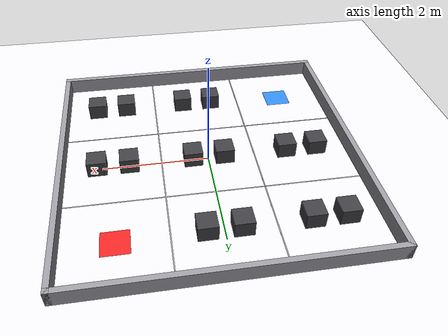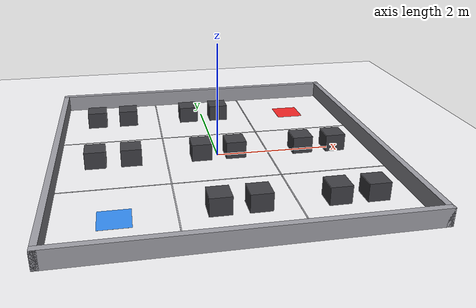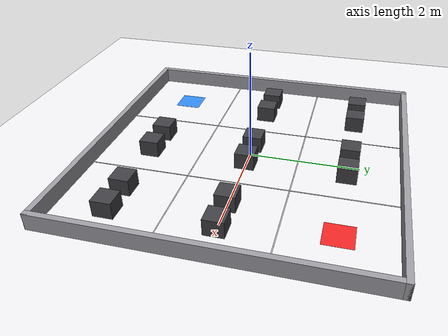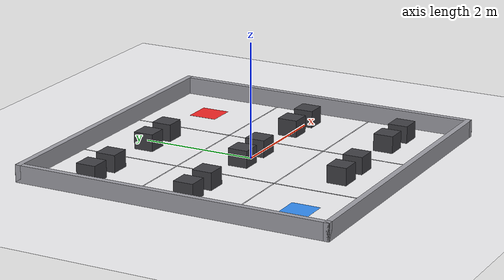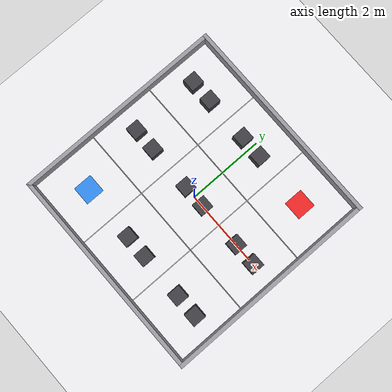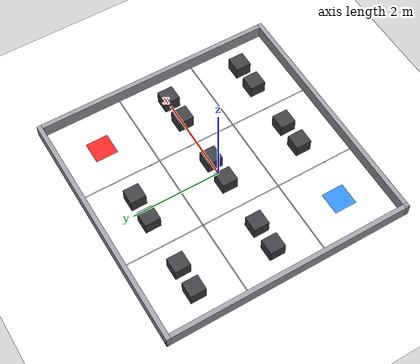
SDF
<?xml version="1.0"?>
<sdf version="1.9">
  <world name="nav_arena">

    <physics name="default_physics" type="ode">
      <max_step_size>0.004</max_step_size>
      <real_time_factor>1.0</real_time_factor>
      <real_time_update_rate>250</real_time_update_rate>
    </physics>

    <plugin filename="gz-sim-physics-system"
            name="gz::sim::systems::Physics"/>
    <plugin filename="gz-sim-user-commands-system"
            name="gz::sim::systems::UserCommands"/>
    <plugin filename="gz-sim-scene-broadcaster-system"
            name="gz::sim::systems::SceneBroadcaster"/>
    <plugin filename="gz-sim-sensors-system"
            name="gz::sim::systems::Sensors">
      <render_engine>ogre2</render_engine>
    </plugin>

    <light type="directional" name="sun">
      <pose>0 0 10 0 0 0</pose>
      <diffuse>0.9 0.9 0.9 1</diffuse>
      <specular>0.2 0.2 0.2 1</specular>
      <direction>-0.2 -0.2 -1</direction>
      <cast_shadows>true</cast_shadows>
    </light>

    <scene>
      <ambient>0.55 0.55 0.55 1</ambient>
      <background>0.85 0.86 0.88 1</background>
      <grid>false</grid>
    </scene>

    <model name="ground_plane">
      <static>true</static>
      <link name="link">
        <collision name="collision">
          <geometry>
            <plane>
              <normal>0 0 1</normal>
              <size>20 20</size>
            </plane>
          </geometry>
        </collision>
        <visual name="visual">
          <geometry>
            <plane>
              <normal>0 0 1</normal>
              <size>20 20</size>
            </plane>
          </geometry>
          <material>
            <ambient>0.92 0.92 0.93 1</ambient>
            <diffuse>0.95 0.95 0.96 1</diffuse>
          </material>
        </visual>
      </link>
    </model>

    <model name="wall_north">
      <static>true</static>
      <pose>0 2.75 0.15 0 0 0</pose>
      <link name="link">
        <collision name="c"><geometry><box><size>5.60 0.10 0.30</size></box></geometry></collision>
        <visual name="v"><geometry><box><size>5.60 0.10 0.30</size></box></geometry>
          <material><ambient>0.55 0.55 0.58 1</ambient><diffuse>0.62 0.62 0.65 1</diffuse></material>
        </visual>
      </link>
    </model>
    <model name="wall_south">
      <static>true</static>
      <pose>0 -2.75 0.15 0 0 0</pose>
      <link name="link">
        <collision name="c"><geometry><box><size>5.60 0.10 0.30</size></box></geometry></collision>
        <visual name="v"><geometry><box><size>5.60 0.10 0.30</size></box></geometry>
          <material><ambient>0.55 0.55 0.58 1</ambient><diffuse>0.62 0.62 0.65 1</diffuse></material>
        </visual>
      </link>
    </model>
    <model name="wall_east">
      <static>true</static>
      <pose>2.75 0 0.15 0 0 0</pose>
      <link name="link">
        <collision name="c"><geometry><box><size>0.10 5.60 0.30</size></box></geometry></collision>
        <visual name="v"><geometry><box><size>0.10 5.60 0.30</size></box></geometry>
          <material><ambient>0.55 0.55 0.58 1</ambient><diffuse>0.62 0.62 0.65 1</diffuse></material>
        </visual>
      </link>
    </model>
    <model name="wall_west">
      <static>true</static>
      <pose>-2.75 0 0.15 0 0 0</pose>
      <link name="link">
        <collision name="c"><geometry><box><size>0.10 5.60 0.30</size></box></geometry></collision>
        <visual name="v"><geometry><box><size>0.10 5.60 0.30</size></box></geometry>
          <material><ambient>0.55 0.55 0.58 1</ambient><diffuse>0.62 0.62 0.65 1</diffuse></material>
        </visual>
      </link>
    </model>

    <model name="grid_line_v1">
      <static>true</static>
      <pose>-0.9 0 0.001 0 0 0</pose>
      <link name="link"><visual name="v">
        <geometry><box><size>0.02 5.40 0.001</size></box></geometry>
        <material><ambient>0.70 0.70 0.72 1</ambient><diffuse>0.70 0.70 0.72 1</diffuse></material>
      </visual></link>
    </model>
    <model name="grid_line_v2">
      <static>true</static>
      <pose>0.9 0 0.001 0 0 0</pose>
      <link name="link"><visual name="v">
        <geometry><box><size>0.02 5.40 0.001</size></box></geometry>
        <material><ambient>0.70 0.70 0.72 1</ambient><diffuse>0.70 0.70 0.72 1</diffuse></material>
      </visual></link>
    </model>
    <model name="grid_line_h1">
      <static>true</static>
      <pose>0 -0.9 0.001 0 0 0</pose>
      <link name="link"><visual name="v">
        <geometry><box><size>5.40 0.02 0.001</size></box></geometry>
        <material><ambient>0.70 0.70 0.72 1</ambient><diffuse>0.70 0.70 0.72 1</diffuse></material>
      </visual></link>
    </model>
    <model name="grid_line_h2">
      <static>true</static>
      <pose>0 0.9 0.001 0 0 0</pose>
      <link name="link"><visual name="v">
        <geometry><box><size>5.40 0.02 0.001</size></box></geometry>
        <material><ambient>0.70 0.70 0.72 1</ambient><diffuse>0.70 0.70 0.72 1</diffuse></material>
      </visual></link>
    </model>

    <model name="start_marker">
      <static>true</static>
      <pose>-1.8 -1.8 0.002 0 0 0</pose>
      <link name="link"><visual name="v">
        <geometry><box><size>0.50 0.50 0.001</size></box></geometry>
        <material>
          <ambient>0.15 0.45 0.85 1</ambient>
          <diffuse>0.20 0.55 0.95 1</diffuse>
          <emissive>0.05 0.15 0.30 1</emissive>
        </material>
      </visual></link>
    </model>

    <model name="goal_marker">
      <static>true</static>
      <pose>1.8 1.8 0.002 0 0 0</pose>
      <link name="link"><visual name="v">
        <geometry><box><size>0.50 0.50 0.001</size></box></geometry>
        <material>
          <ambient>0.85 0.10 0.10 1</ambient>
          <diffuse>0.95 0.15 0.15 1</diffuse>
          <emissive>0.30 0.05 0.05 1</emissive>
        </material>
      </visual></link>
    </model>

    <!-- Cell (0,1) — middle-bottom -->
    <model name="obs_01_a">
      <static>true</static>
      <pose>-0.30 -1.80 0.15 0 0 0</pose>
      <link name="link">
        <collision name="c"><geometry><box><size>0.35 0.35 0.30</size></box></geometry></collision>
        <visual name="v"><geometry><box><size>0.35 0.35 0.30</size></box></geometry>
          <material><ambient>0.18 0.18 0.20 1</ambient><diffuse>0.25 0.25 0.27 1</diffuse></material>
        </visual>
      </link>
    </model>
    <model name="obs_01_b">
      <static>true</static>
      <pose>0.30 -1.80 0.15 0 0 0</pose>
      <link name="link">
        <collision name="c"><geometry><box><size>0.35 0.35 0.30</size></box></geometry></collision>
        <visual name="v"><geometry><box><size>0.35 0.35 0.30</size></box></geometry>
          <material><ambient>0.18 0.18 0.20 1</ambient><diffuse>0.25 0.25 0.27 1</diffuse></material>
        </visual>
      </link>
    </model>

    <!-- Cell (0,2) — right-bottom -->
    <model name="obs_02_a">
      <static>true</static>
      <pose>1.50 -1.80 0.15 0 0 0</pose>
      <link name="link">
        <collision name="c"><geometry><box><size>0.35 0.35 0.30</size></box></geometry></collision>
        <visual name="v"><geometry><box><size>0.35 0.35 0.30</size></box></geometry>
          <material><ambient>0.18 0.18 0.20 1</ambient><diffuse>0.25 0.25 0.27 1</diffuse></material>
        </visual>
      </link>
    </model>
    <model name="obs_02_b">
      <static>true</static>
      <pose>2.10 -1.80 0.15 0 0 0</pose>
      <link name="link">
        <collision name="c"><geometry><box><size>0.35 0.35 0.30</size></box></geometry></collision>
        <visual name="v"><geometry><box><size>0.35 0.35 0.30</size></box></geometry>
          <material><ambient>0.18 0.18 0.20 1</ambient><diffuse>0.25 0.25 0.27 1</diffuse></material>
        </visual>
      </link>
    </model>

    <!-- Cell (1,0) — left-middle -->
    <model name="obs_10_a">
      <static>true</static>
      <pose>-2.10 0.00 0.15 0 0 0</pose>
      <link name="link">
        <collision name="c"><geometry><box><size>0.35 0.35 0.30</size></box></geometry></collision>
        <visual name="v"><geometry><box><size>0.35 0.35 0.30</size></box></geometry>
          <material><ambient>0.18 0.18 0.20 1</ambient><diffuse>0.25 0.25 0.27 1</diffuse></material>
        </visual>
      </link>
    </model>
    <model name="obs_10_b">
      <static>true</static>
      <pose>-1.50 0.00 0.15 0 0 0</pose>
      <link name="link">
        <collision name="c"><geometry><box><size>0.35 0.35 0.30</size></box></geometry></collision>
        <visual name="v"><geometry><box><size>0.35 0.35 0.30</size></box></geometry>
          <material><ambient>0.18 0.18 0.20 1</ambient><diffuse>0.25 0.25 0.27 1</diffuse></material>
        </visual>
      </link>
    </model>

    <!-- Cell (1,1) — center -->
    <model name="obs_11_a">
      <static>true</static>
      <pose>-0.30 0.00 0.15 0 0 0</pose>
      <link name="link">
        <collision name="c"><geometry><box><size>0.35 0.35 0.30</size></box></geometry></collision>
        <visual name="v"><geometry><box><size>0.35 0.35 0.30</size></box></geometry>
          <material><ambient>0.18 0.18 0.20 1</ambient><diffuse>0.25 0.25 0.27 1</diffuse></material>
        </visual>
      </link>
    </model>
    <model name="obs_11_b">
      <static>true</static>
      <pose>0.30 0.00 0.15 0 0 0</pose>
      <link name="link">
        <collision name="c"><geometry><box><size>0.35 0.35 0.30</size></box></geometry></collision>
        <visual name="v"><geometry><box><size>0.35 0.35 0.30</size></box></geometry>
          <material><ambient>0.18 0.18 0.20 1</ambient><diffuse>0.25 0.25 0.27 1</diffuse></material>
        </visual>
      </link>
    </model>

    <!-- Cell (1,2) — right-middle -->
    <model name="obs_12_a">
      <static>true</static>
      <pose>1.50 0.00 0.15 0 0 0</pose>
      <link name="link">
        <collision name="c"><geometry><box><size>0.35 0.35 0.30</size></box></geometry></collision>
        <visual name="v"><geometry><box><size>0.35 0.35 0.30</size></box></geometry>
          <material><ambient>0.18 0.18 0.20 1</ambient><diffuse>0.25 0.25 0.27 1</diffuse></material>
        </visual>
      </link>
    </model>
    <model name="obs_12_b">
      <static>true</static>
      <pose>2.10 0.00 0.15 0 0 0</pose>
      <link name="link">
        <collision name="c"><geometry><box><size>0.35 0.35 0.30</size></box></geometry></collision>
        <visual name="v"><geometry><box><size>0.35 0.35 0.30</size></box></geometry>
          <material><ambient>0.18 0.18 0.20 1</ambient><diffuse>0.25 0.25 0.27 1</diffuse></material>
        </visual>
      </link>
    </model>

    <!-- Cell (2,0) — left-top -->
    <model name="obs_20_a">
      <static>true</static>
      <pose>-2.10 1.80 0.15 0 0 0</pose>
      <link name="link">
        <collision name="c"><geometry><box><size>0.35 0.35 0.30</size></box></geometry></collision>
        <visual name="v"><geometry><box><size>0.35 0.35 0.30</size></box></geometry>
          <material><ambient>0.18 0.18 0.20 1</ambient><diffuse>0.25 0.25 0.27 1</diffuse></material>
        </visual>
      </link>
    </model>
    <model name="obs_20_b">
      <static>true</static>
      <pose>-1.50 1.80 0.15 0 0 0</pose>
      <link name="link">
        <collision name="c"><geometry><box><size>0.35 0.35 0.30</size></box></geometry></collision>
        <visual name="v"><geometry><box><size>0.35 0.35 0.30</size></box></geometry>
          <material><ambient>0.18 0.18 0.20 1</ambient><diffuse>0.25 0.25 0.27 1</diffuse></material>
        </visual>
      </link>
    </model>

    <!-- Cell (2,1) — middle-top -->
    <model name="obs_21_a">
      <static>true</static>
      <pose>-0.30 1.80 0.15 0 0 0</pose>
      <link name="link">
        <collision name="c"><geometry><box><size>0.35 0.35 0.30</size></box></geometry></collision>
        <visual name="v"><geometry><box><size>0.35 0.35 0.30</size></box></geometry>
          <material><ambient>0.18 0.18 0.20 1</ambient><diffuse>0.25 0.25 0.27 1</diffuse></material>
        </visual>
      </link>
    </model>
    <model name="obs_21_b">
      <static>true</static>
      <pose>0.30 1.80 0.15 0 0 0</pose>
      <link name="link">
        <collision name="c"><geometry><box><size>0.35 0.35 0.30</size></box></geometry></collision>
        <visual name="v"><geometry><box><size>0.35 0.35 0.30</size></box></geometry>
          <material><ambient>0.18 0.18 0.20 1</ambient><diffuse>0.25 0.25 0.27 1</diffuse></material>
        </visual>
      </link>
    </model>

  </world>
</sdf>
